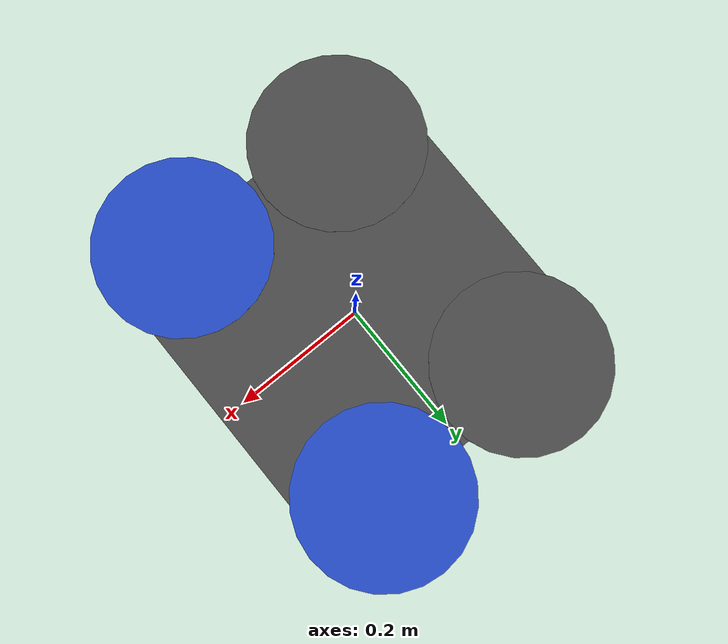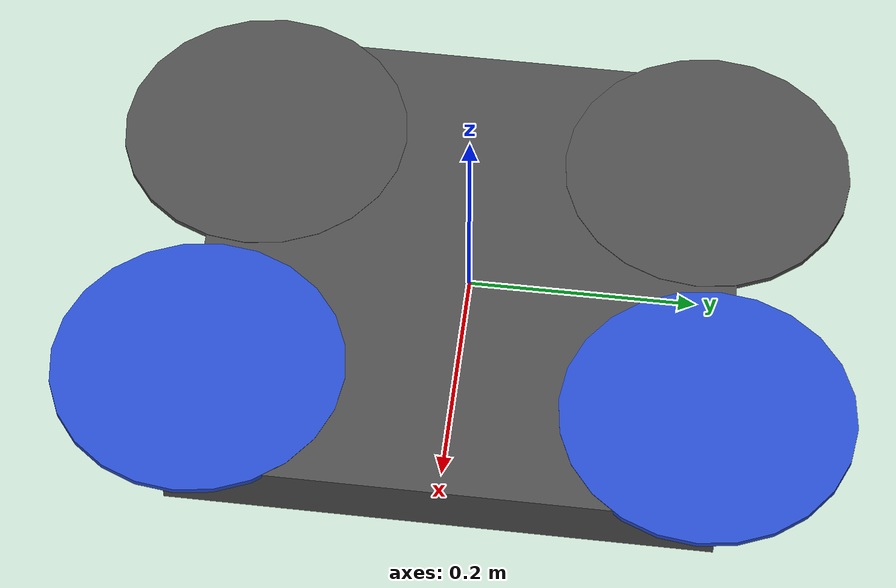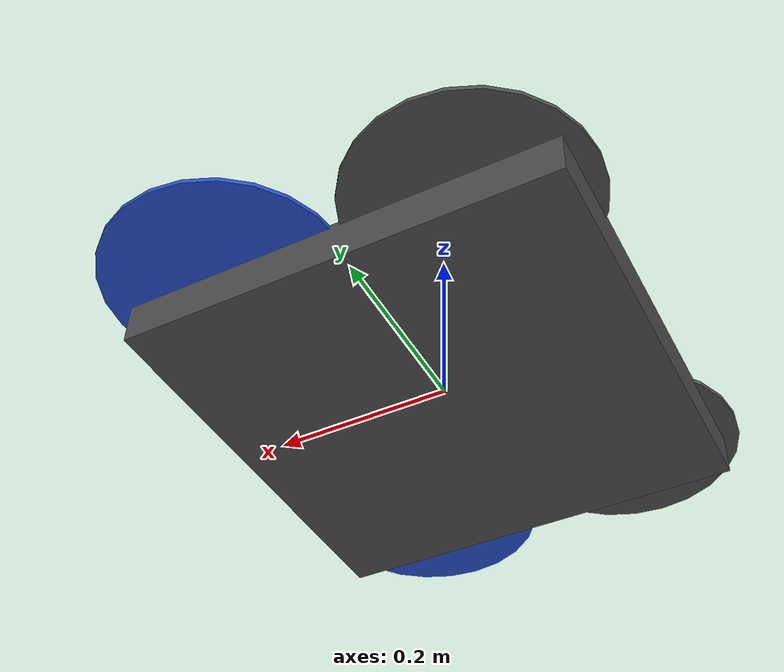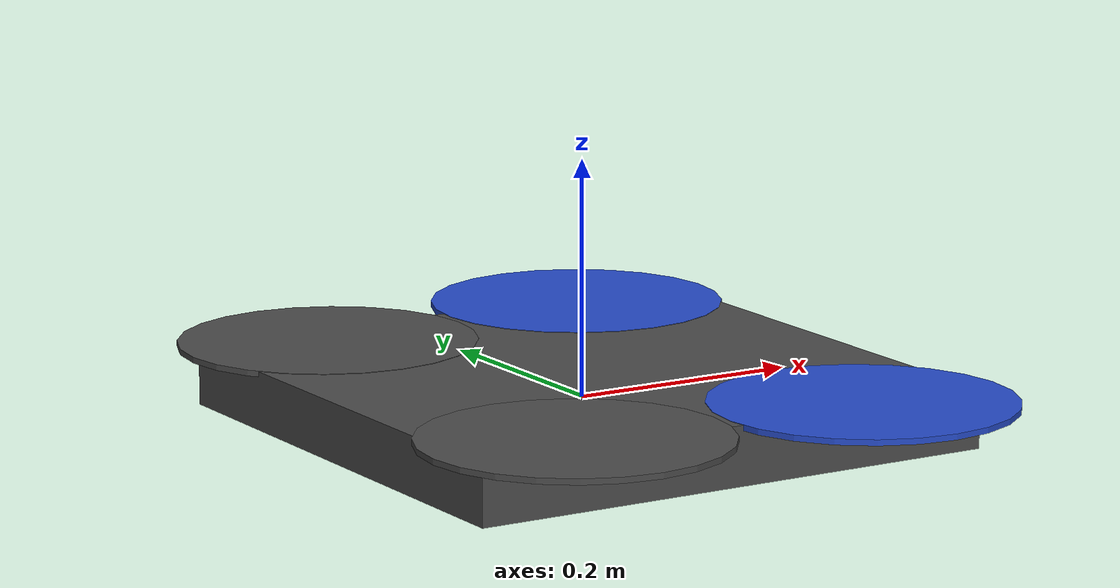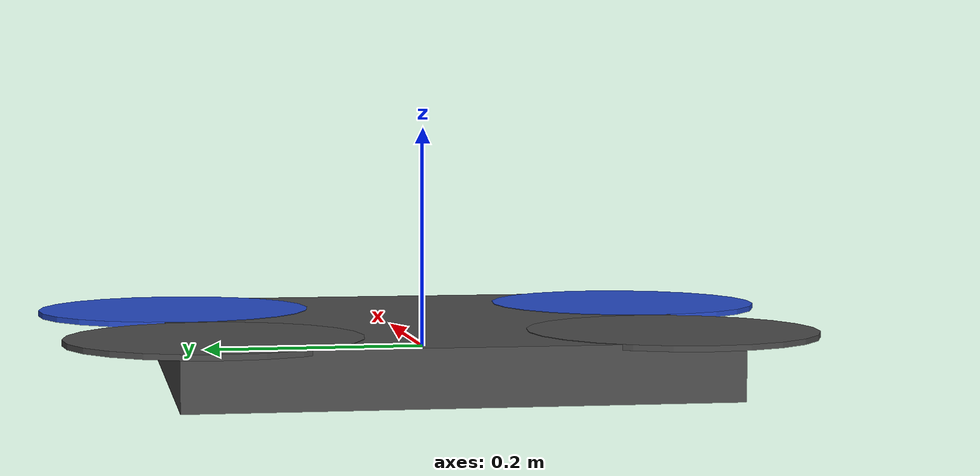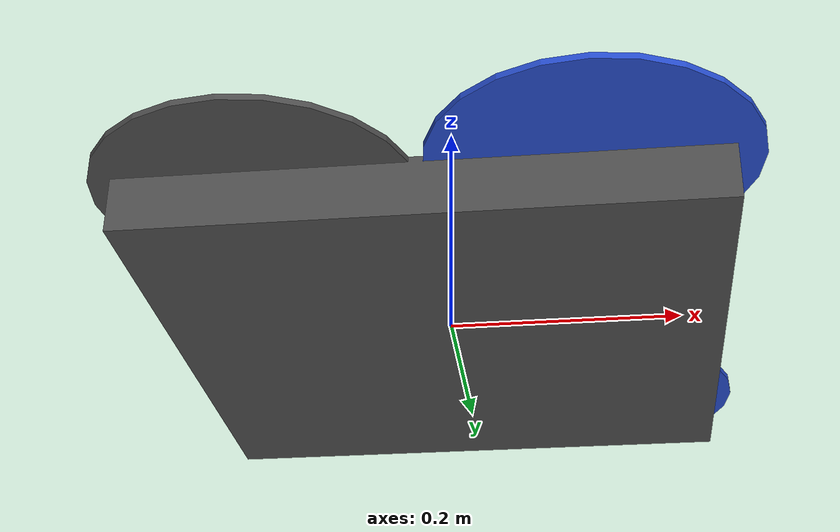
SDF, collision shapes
<sdf version='1.6'>
  <model name='iris'>
    <link name='base_link'>
      <pose frame=''>0 0 0 0 -0 0</pose>
      <inertial>
        <pose frame=''>0 0 0 0 -0 0</pose>
        <mass>1.5</mass>
        <inertia>
          <ixx>0.0347563</ixx>
          <ixy>0</ixy>
          <ixz>0</ixz>
          <iyy>0.0458929</iyy>
          <iyz>0</iyz>
          <izz>0.0977</izz>
        </inertia>
      </inertial>
      <collision name='base_link_inertia_collision'>
        <pose frame=''>0 0 0 0 -0 0</pose>
        <geometry>
          <box>
            <size>0.47 0.47 0.05</size>
          </box>
        </geometry>
        <surface>
          <contact>
            <ode>
              <min_depth>0.001</min_depth>
              <max_vel>0</max_vel>
            </ode>
          </contact>
          <friction>
            <ode/>
          </friction>
        </surface>
      </collision>
      <visual name='base_link_inertia_visual'>
        <pose frame=''>0 0 0 0 -0 0</pose>
        <geometry>
          <mesh>
            <scale>1 1 1</scale>
            <uri>model://rotors_description/meshes/iris.stl</uri>
          </mesh>
        </geometry>
        <material>
          <script>
            <name>Gazebo/DarkGrey</name>
            <uri>file://media/materials/scripts/gazebo.material</uri>
          </script>
        </material>
      </visual>
      <visual name='base_link_fixed_joint_lump__sonar_backward_link_visual_1'>
        <pose frame=''>-0.2 0 -0.05 0 1.05 0</pose>
        <geometry>
          <box>
            <size>0.01 0.01 0.01</size>
          </box>
        </geometry>
        <material>
          <script>
            <uri>__default__</uri>
            <name>__default__</name>
          </script>
        </material>
      </visual>
      <visual name='base_link_fixed_joint_lump__sonar_forward_link_visual_2'>
        <pose frame=''>0.2 0 -0.05 0 1.05 3.14</pose>
        <geometry>
          <box>
            <size>0.01 0.01 0.01</size>
          </box>
        </geometry>
        <material>
          <script>
            <uri>__default__</uri>
            <name>__default__</name>
          </script>
        </material>
      </visual>
      <visual name='base_link_fixed_joint_lump__sonar_middle_link_visual_3'>
        <pose frame=''>0 0 -0.05 0 -0 3.14</pose>
        <geometry>
          <box>
            <size>0.01 0.01 0.01</size>
          </box>
        </geometry>
        <material>
          <script>
            <uri>__default__</uri>
            <name>__default__</name>
          </script>
        </material>
      </visual>
      <velocity_decay/>
      <velocity_decay/>
      <sensor name='sonar_backward' type='ray'>
        <always_on>1</always_on>
        <update_rate>5</update_rate>
        <visualize>0</visualize>
        <ray>
          <scan>
            <horizontal>
              <samples>2</samples>
              <resolution>1</resolution>
              <min_angle>-5</min_angle>
              <max_angle>5</max_angle>
            </horizontal>
            <vertical>
              <samples>2</samples>
              <resolution>1</resolution>
              <min_angle>-5</min_angle>
              <max_angle>5</max_angle>
            </vertical>
          </scan>
          <range>
            <min>0.2</min>
            <max>60</max>
            <resolution>0.01</resolution>
          </range>
        </ray>
        <plugin name='gazebo_ros_sonar_backward_controller' filename='libhector_gazebo_ros_sonar.so'>
          <gaussianNoise>0.005</gaussianNoise>
          <topicName>distance_backward</topicName>
          <frameId>sonar_backward_link</frameId>
        </plugin>
        <pose frame=''>-0.2 0 -0.05 0 1.05 0</pose>
      </sensor>
      <velocity_decay/>
      <sensor name='sonar_forward' type='ray'>
        <always_on>1</always_on>
        <update_rate>5</update_rate>
        <visualize>0</visualize>
        <ray>
          <scan>
            <horizontal>
              <samples>2</samples>
              <resolution>1</resolution>
              <min_angle>-5</min_angle>
              <max_angle>5</max_angle>
            </horizontal>
            <vertical>
              <samples>2</samples>
              <resolution>1</resolution>
              <min_angle>-5</min_angle>
              <max_angle>5</max_angle>
            </vertical>
          </scan>
          <range>
            <min>0.2</min>
            <max>60</max>
            <resolution>0.01</resolution>
          </range>
        </ray>
        <plugin name='gazebo_ros_sonar_forward_controller' filename='libhector_gazebo_ros_sonar.so'>
          <gaussianNoise>0.005</gaussianNoise>
          <topicName>distance_forward</topicName>
          <frameId>sonar_forward_link</frameId>
        </plugin>
        <pose frame=''>0.2 0 -0.05 0 1.05 3.14</pose>
      </sensor>
      <gravity>1</gravity>
      <velocity_decay/>
      <sensor name='sonar_middle' type='ray'>
        <always_on>1</always_on>
        <update_rate>5</update_rate>
        <visualize>0</visualize>
        <ray>
          <scan>
            <horizontal>
              <samples>2</samples>
              <resolution>1</resolution>
              <min_angle>-5</min_angle>
              <max_angle>5</max_angle>
            </horizontal>
            <vertical>
              <samples>2</samples>
              <resolution>1</resolution>
              <min_angle>-5</min_angle>
              <max_angle>5</max_angle>
            </vertical>
          </scan>
          <range>
            <min>0.2</min>
            <max>60</max>
            <resolution>0.01</resolution>
          </range>
        </ray>
        <plugin name='gazebo_ros_sonar_middle_controller' filename='libhector_gazebo_ros_sonar.so'>
          <gaussianNoise>0.005</gaussianNoise>
          <topicName>distance_middle</topicName>
          <frameId>sonar_middle_link</frameId>
        </plugin>
        <pose frame=''>0 0 -0.05 0 -0 3.14</pose>
      </sensor>
    </link>
    <link name='/imu_link'>
      <pose frame=''>0 0 0 0 -0 0</pose>
      <inertial>
        <pose frame=''>0 0 0 0 -0 0</pose>
        <mass>0.015</mass>
        <inertia>
          <ixx>1e-05</ixx>
          <ixy>0</ixy>
          <ixz>0</ixz>
          <iyy>1e-05</iyy>
          <iyz>0</iyz>
          <izz>1e-05</izz>
        </inertia>
      </inertial>
    </link>
    <joint name='/imu_joint' type='revolute'>
      <child>/imu_link</child>
      <parent>base_link</parent>
      <axis>
        <xyz>1 0 0</xyz>
        <limit>
          <lower>0</lower>
          <upper>0</upper>
          <effort>0</effort>
          <velocity>0</velocity>
        </limit>
        <dynamics>
          <spring_reference>0</spring_reference>
          <spring_stiffness>0</spring_stiffness>
        </dynamics>
        <use_parent_model_frame>1</use_parent_model_frame>
      </axis>
    </joint>
    <link name='rotor_0'>
      <pose frame=''>0.13 -0.22 0.023 0 -0 0</pose>
      <inertial>
        <pose frame=''>0 0 0 0 -0 0</pose>
        <mass>0.005</mass>
        <inertia>
          <ixx>9.75e-07</ixx>
          <ixy>0</ixy>
          <ixz>0</ixz>
          <iyy>0.000273104</iyy>
          <iyz>0</iyz>
          <izz>0.000274004</izz>
        </inertia>
      </inertial>
      <collision name='rotor_0_collision'>
        <pose frame=''>0 0 0 0 -0 0</pose>
        <geometry>
          <cylinder>
            <length>0.005</length>
            <radius>0.128</radius>
          </cylinder>
        </geometry>
        <surface>
          <contact>
            <ode/>
          </contact>
          <friction>
            <ode/>
          </friction>
        </surface>
      </collision>
      <visual name='rotor_0_visual'>
        <pose frame=''>0 0 0 0 -0 0</pose>
        <geometry>
          <mesh>
            <scale>1 1 1</scale>
            <uri>model://rotors_description/meshes/iris_prop_ccw.dae</uri>
          </mesh>
        </geometry>
        <material>
          <script>
            <name>Gazebo/Blue</name>
            <uri>file://media/materials/scripts/gazebo.material</uri>
          </script>
        </material>
      </visual>
      <gravity>1</gravity>
      <velocity_decay/>
    </link>
    <joint name='rotor_0_joint' type='revolute'>
      <child>rotor_0</child>
      <parent>base_link</parent>
      <axis>
        <xyz>0 0 1</xyz>
        <limit>
          <lower>-1e+16</lower>
          <upper>1e+16</upper>
        </limit>
        <dynamics>
          <spring_reference>0</spring_reference>
          <spring_stiffness>0</spring_stiffness>
        </dynamics>
        <use_parent_model_frame>1</use_parent_model_frame>
      </axis>
    </joint>
    <link name='rotor_1'>
      <pose frame=''>-0.13 0.2 0.023 0 -0 0</pose>
      <inertial>
        <pose frame=''>0 0 0 0 -0 0</pose>
        <mass>0.005</mass>
        <inertia>
          <ixx>9.75e-07</ixx>
          <ixy>0</ixy>
          <ixz>0</ixz>
          <iyy>0.000273104</iyy>
          <iyz>0</iyz>
          <izz>0.000274004</izz>
        </inertia>
      </inertial>
      <collision name='rotor_1_collision'>
        <pose frame=''>0 0 0 0 -0 0</pose>
        <geometry>
          <cylinder>
            <length>0.005</length>
            <radius>0.128</radius>
          </cylinder>
        </geometry>
        <surface>
          <contact>
            <ode/>
          </contact>
          <friction>
            <ode/>
          </friction>
        </surface>
      </collision>
      <visual name='rotor_1_visual'>
        <pose frame=''>0 0 0 0 -0 0</pose>
        <geometry>
          <mesh>
            <scale>1 1 1</scale>
            <uri>model://rotors_description/meshes/iris_prop_ccw.dae</uri>
          </mesh>
        </geometry>
        <material>
          <script>
            <name>Gazebo/DarkGrey</name>
            <uri>file://media/materials/scripts/gazebo.material</uri>
          </script>
        </material>
      </visual>
      <gravity>1</gravity>
      <velocity_decay/>
    </link>
    <joint name='rotor_1_joint' type='revolute'>
      <child>rotor_1</child>
      <parent>base_link</parent>
      <axis>
        <xyz>0 0 1</xyz>
        <limit>
          <lower>-1e+16</lower>
          <upper>1e+16</upper>
        </limit>
        <dynamics>
          <spring_reference>0</spring_reference>
          <spring_stiffness>0</spring_stiffness>
        </dynamics>
        <use_parent_model_frame>1</use_parent_model_frame>
      </axis>
    </joint>
    <link name='rotor_2'>
      <pose frame=''>0.13 0.22 0.023 0 -0 0</pose>
      <inertial>
        <pose frame=''>0 0 0 0 -0 0</pose>
        <mass>0.005</mass>
        <inertia>
          <ixx>9.75e-07</ixx>
          <ixy>0</ixy>
          <ixz>0</ixz>
          <iyy>0.000273104</iyy>
          <iyz>0</iyz>
          <izz>0.000274004</izz>
        </inertia>
      </inertial>
      <collision name='rotor_2_collision'>
        <pose frame=''>0 0 0 0 -0 0</pose>
        <geometry>
          <cylinder>
            <length>0.005</length>
            <radius>0.128</radius>
          </cylinder>
        </geometry>
        <surface>
          <contact>
            <ode/>
          </contact>
          <friction>
            <ode/>
          </friction>
        </surface>
      </collision>
      <visual name='rotor_2_visual'>
        <pose frame=''>0 0 0 0 -0 0</pose>
        <geometry>
          <mesh>
            <scale>1 1 1</scale>
            <uri>model://rotors_description/meshes/iris_prop_cw.dae</uri>
          </mesh>
        </geometry>
        <material>
          <script>
            <name>Gazebo/Blue</name>
            <uri>file://media/materials/scripts/gazebo.material</uri>
          </script>
        </material>
      </visual>
      <gravity>1</gravity>
      <velocity_decay/>
    </link>
    <joint name='rotor_2_joint' type='revolute'>
      <child>rotor_2</child>
      <parent>base_link</parent>
      <axis>
        <xyz>0 0 1</xyz>
        <limit>
          <lower>-1e+16</lower>
          <upper>1e+16</upper>
        </limit>
        <dynamics>
          <spring_reference>0</spring_reference>
          <spring_stiffness>0</spring_stiffness>
        </dynamics>
        <use_parent_model_frame>1</use_parent_model_frame>
      </axis>
    </joint>
    <link name='rotor_3'>
      <pose frame=''>-0.13 -0.2 0.023 0 -0 0</pose>
      <inertial>
        <pose frame=''>0 0 0 0 -0 0</pose>
        <mass>0.005</mass>
        <inertia>
          <ixx>9.75e-07</ixx>
          <ixy>0</ixy>
          <ixz>0</ixz>
          <iyy>0.000273104</iyy>
          <iyz>0</iyz>
          <izz>0.000274004</izz>
        </inertia>
      </inertial>
      <collision name='rotor_3_collision'>
        <pose frame=''>0 0 0 0 -0 0</pose>
        <geometry>
          <cylinder>
            <length>0.005</length>
            <radius>0.128</radius>
          </cylinder>
        </geometry>
        <surface>
          <contact>
            <ode/>
          </contact>
          <friction>
            <ode/>
          </friction>
        </surface>
      </collision>
      <visual name='rotor_3_visual'>
        <pose frame=''>0 0 0 0 -0 0</pose>
        <geometry>
          <mesh>
            <scale>1 1 1</scale>
            <uri>model://rotors_description/meshes/iris_prop_cw.dae</uri>
          </mesh>
        </geometry>
        <material>
          <script>
            <name>Gazebo/DarkGrey</name>
            <uri>file://media/materials/scripts/gazebo.material</uri>
          </script>
        </material>
      </visual>
      <gravity>1</gravity>
      <velocity_decay/>
    </link>
    <joint name='rotor_3_joint' type='revolute'>
      <child>rotor_3</child>
      <parent>base_link</parent>
      <axis>
        <xyz>0 0 1</xyz>
        <limit>
          <lower>-1e+16</lower>
          <upper>1e+16</upper>
        </limit>
        <dynamics>
          <spring_reference>0</spring_reference>
          <spring_stiffness>0</spring_stiffness>
        </dynamics>
        <use_parent_model_frame>1</use_parent_model_frame>
      </axis>
    </joint>
    <plugin name='rosbag' filename='libgazebo_multirotor_base_plugin.so'>
      <robotNamespace/>
      <linkName>base_link</linkName>
      <rotorVelocitySlowdownSim>10</rotorVelocitySlowdownSim>
    </plugin>
    <plugin name='front_right_motor_model' filename='libgazebo_motor_model.so'>
      <robotNamespace/>
      <jointName>rotor_0_joint</jointName>
      <linkName>rotor_0</linkName>
      <turningDirection>ccw</turningDirection>
      <timeConstantUp>0.0125</timeConstantUp>
      <timeConstantDown>0.025</timeConstantDown>
      <maxRotVelocity>1100</maxRotVelocity>
      <motorConstant>8.54858e-06</motorConstant>
      <momentConstant>0.06</momentConstant>
      <commandSubTopic>/gazebo/command/motor_speed</commandSubTopic>
      <motorNumber>0</motorNumber>
      <rotorDragCoefficient>0.000806428</rotorDragCoefficient>
      <rollingMomentCoefficient>1e-06</rollingMomentCoefficient>
      <motorSpeedPubTopic>/motor_speed/0</motorSpeedPubTopic>
      <rotorVelocitySlowdownSim>10</rotorVelocitySlowdownSim>
    </plugin>
    <plugin name='back_left_motor_model' filename='libgazebo_motor_model.so'>
      <robotNamespace/>
      <jointName>rotor_1_joint</jointName>
      <linkName>rotor_1</linkName>
      <turningDirection>ccw</turningDirection>
      <timeConstantUp>0.0125</timeConstantUp>
      <timeConstantDown>0.025</timeConstantDown>
      <maxRotVelocity>1100</maxRotVelocity>
      <motorConstant>8.54858e-06</motorConstant>
      <momentConstant>0.06</momentConstant>
      <commandSubTopic>/gazebo/command/motor_speed</commandSubTopic>
      <motorNumber>1</motorNumber>
      <rotorDragCoefficient>0.000806428</rotorDragCoefficient>
      <rollingMomentCoefficient>1e-06</rollingMomentCoefficient>
      <motorSpeedPubTopic>/motor_speed/1</motorSpeedPubTopic>
      <rotorVelocitySlowdownSim>10</rotorVelocitySlowdownSim>
    </plugin>
    <plugin name='front_left_motor_model' filename='libgazebo_motor_model.so'>
      <robotNamespace/>
      <jointName>rotor_2_joint</jointName>
      <linkName>rotor_2</linkName>
      <turningDirection>cw</turningDirection>
      <timeConstantUp>0.0125</timeConstantUp>
      <timeConstantDown>0.025</timeConstantDown>
      <maxRotVelocity>1100</maxRotVelocity>
      <motorConstant>8.54858e-06</motorConstant>
      <momentConstant>0.06</momentConstant>
      <commandSubTopic>/gazebo/command/motor_speed</commandSubTopic>
      <motorNumber>2</motorNumber>
      <rotorDragCoefficient>0.000806428</rotorDragCoefficient>
      <rollingMomentCoefficient>1e-06</rollingMomentCoefficient>
      <motorSpeedPubTopic>/motor_speed/2</motorSpeedPubTopic>
      <rotorVelocitySlowdownSim>10</rotorVelocitySlowdownSim>
    </plugin>
    <plugin name='back_right_motor_model' filename='libgazebo_motor_model.so'>
      <robotNamespace/>
      <jointName>rotor_3_joint</jointName>
      <linkName>rotor_3</linkName>
      <turningDirection>cw</turningDirection>
      <timeConstantUp>0.0125</timeConstantUp>
      <timeConstantDown>0.025</timeConstantDown>
      <maxRotVelocity>1100</maxRotVelocity>
      <motorConstant>8.54858e-06</motorConstant>
      <momentConstant>0.06</momentConstant>
      <commandSubTopic>/gazebo/command/motor_speed</commandSubTopic>
      <motorNumber>3</motorNumber>
      <rotorDragCoefficient>0.000806428</rotorDragCoefficient>
      <rollingMomentCoefficient>1e-06</rollingMomentCoefficient>
      <motorSpeedPubTopic>/motor_speed/3</motorSpeedPubTopic>
      <rotorVelocitySlowdownSim>10</rotorVelocitySlowdownSim>
    </plugin>
    <plugin name='gps_plugin' filename='libgazebo_gps_plugin.so'>
      <robotNamespace/>
      <gpsNoise>1</gpsNoise>
    </plugin>
    <plugin name='mavlink_interface' filename='libgazebo_mavlink_interface.so'>
      <robotNamespace/>
      <imuSubTopic>/imu</imuSubTopic>
      <gpsSubTopic>/gps</gpsSubTopic>
      <mavlink_addr>INADDR_ANY</mavlink_addr>
      <mavlink_udp_port>14560</mavlink_udp_port>
      <serialEnabled>0</serialEnabled>
      <serialDevice>/dev/ttyACM0</serialDevice>
      <baudRate>921600</baudRate>
      <qgc_addr>INADDR_ANY</qgc_addr>
      <qgc_udp_port>14550</qgc_udp_port>
      <hil_mode>0</hil_mode>
      <hil_state_level>0</hil_state_level>
      <vehicle_is_tailsitter>0</vehicle_is_tailsitter>
      <send_odometry>0</send_odometry>
      <motorSpeedCommandPubTopic>/gazebo/command/motor_speed</motorSpeedCommandPubTopic>
      <control_channels>
        <channel name='rotor1'>
          <input_index>0</input_index>
          <input_offset>0</input_offset>
          <input_scaling>1000</input_scaling>
          <zero_position_disarmed>0</zero_position_disarmed>
          <zero_position_armed>100</zero_position_armed>
          <joint_control_type>velocity</joint_control_type>
        </channel>
        <channel name='rotor2'>
          <input_index>1</input_index>
          <input_offset>0</input_offset>
          <input_scaling>1000</input_scaling>
          <zero_position_disarmed>0</zero_position_disarmed>
          <zero_position_armed>100</zero_position_armed>
          <joint_control_type>velocity</joint_control_type>
        </channel>
        <channel name='rotor3'>
          <input_index>2</input_index>
          <input_offset>0</input_offset>
          <input_scaling>1000</input_scaling>
          <zero_position_disarmed>0</zero_position_disarmed>
          <zero_position_armed>100</zero_position_armed>
          <joint_control_type>velocity</joint_control_type>
        </channel>
        <channel name='rotor4'>
          <input_index>3</input_index>
          <input_offset>0</input_offset>
          <input_scaling>1000</input_scaling>
          <zero_position_disarmed>0</zero_position_disarmed>
          <zero_position_armed>100</zero_position_armed>
          <joint_control_type>velocity</joint_control_type>
        </channel>
        <channel name='rotor5'>
          <input_index>4</input_index>
          <input_offset>1</input_offset>
          <input_scaling>324.6</input_scaling>
          <zero_position_disarmed>0</zero_position_disarmed>
          <zero_position_armed>0</zero_position_armed>
          <joint_control_type>velocity</joint_control_type>
          <joint_control_pid>
            <p>0.1</p>
            <i>0</i>
            <d>0</d>
            <iMax>0.0</iMax>
            <iMin>0.0</iMin>
            <cmdMax>2</cmdMax>
            <cmdMin>-2</cmdMin>
          </joint_control_pid>
          <joint_name>zephyr_delta_wing::propeller_joint</joint_name>
        </channel>
        <channel name='rotor6'>
          <input_index>5</input_index>
          <input_offset>0</input_offset>
          <input_scaling>0.524</input_scaling>
          <zero_position_disarmed>0</zero_position_disarmed>
          <zero_position_armed>0</zero_position_armed>
          <joint_control_type>position</joint_control_type>
          <joint_name>zephyr_delta_wing::flap_left_joint</joint_name>
          <joint_control_pid>
            <p>10.0</p>
            <i>0</i>
            <d>0</d>
            <iMax>0</iMax>
            <iMin>0</iMin>
            <cmdMax>20</cmdMax>
            <cmdMin>-20</cmdMin>
          </joint_control_pid>
        </channel>
        <channel name='rotor7'>
          <input_index>6</input_index>
          <input_offset>0</input_offset>
          <input_scaling>0.524</input_scaling>
          <zero_position_disarmed>0</zero_position_disarmed>
          <zero_position_armed>0</zero_position_armed>
          <joint_control_type>position</joint_control_type>
          <joint_name>zephyr_delta_wing::flap_right_joint</joint_name>
          <joint_control_pid>
            <p>10.0</p>
            <i>0</i>
            <d>0</d>
            <iMax>0</iMax>
            <iMin>0</iMin>
            <cmdMax>20</cmdMax>
            <cmdMin>-20</cmdMin>
          </joint_control_pid>
        </channel>
        <channel name='rotor8'>
          <input_index>7</input_index>
          <input_offset>0</input_offset>
          <input_scaling>0.524</input_scaling>
          <zero_position_disarmed>0</zero_position_disarmed>
          <zero_position_armed>0</zero_position_armed>
          <joint_control_type>position</joint_control_type>
        </channel>
      </control_channels>
    </plugin>
    <static>0</static>
    <plugin name='rotors_gazebo_imu_plugin' filename='libgazebo_imu_plugin.so'>
      <robotNamespace/>
      <linkName>/imu_link</linkName>
      <imuTopic>/imu</imuTopic>
      <gyroscopeNoiseDensity>0.0003394</gyroscopeNoiseDensity>
      <gyroscopeRandomWalk>3.8785e-05</gyroscopeRandomWalk>
      <gyroscopeBiasCorrelationTime>1000.0</gyroscopeBiasCorrelationTime>
      <gyroscopeTurnOnBiasSigma>0.0087</gyroscopeTurnOnBiasSigma>
      <accelerometerNoiseDensity>0.004</accelerometerNoiseDensity>
      <accelerometerRandomWalk>0.006</accelerometerRandomWalk>
      <accelerometerBiasCorrelationTime>300.0</accelerometerBiasCorrelationTime>
      <accelerometerTurnOnBiasSigma>0.196</accelerometerTurnOnBiasSigma>
    </plugin>
  </model>
</sdf>
